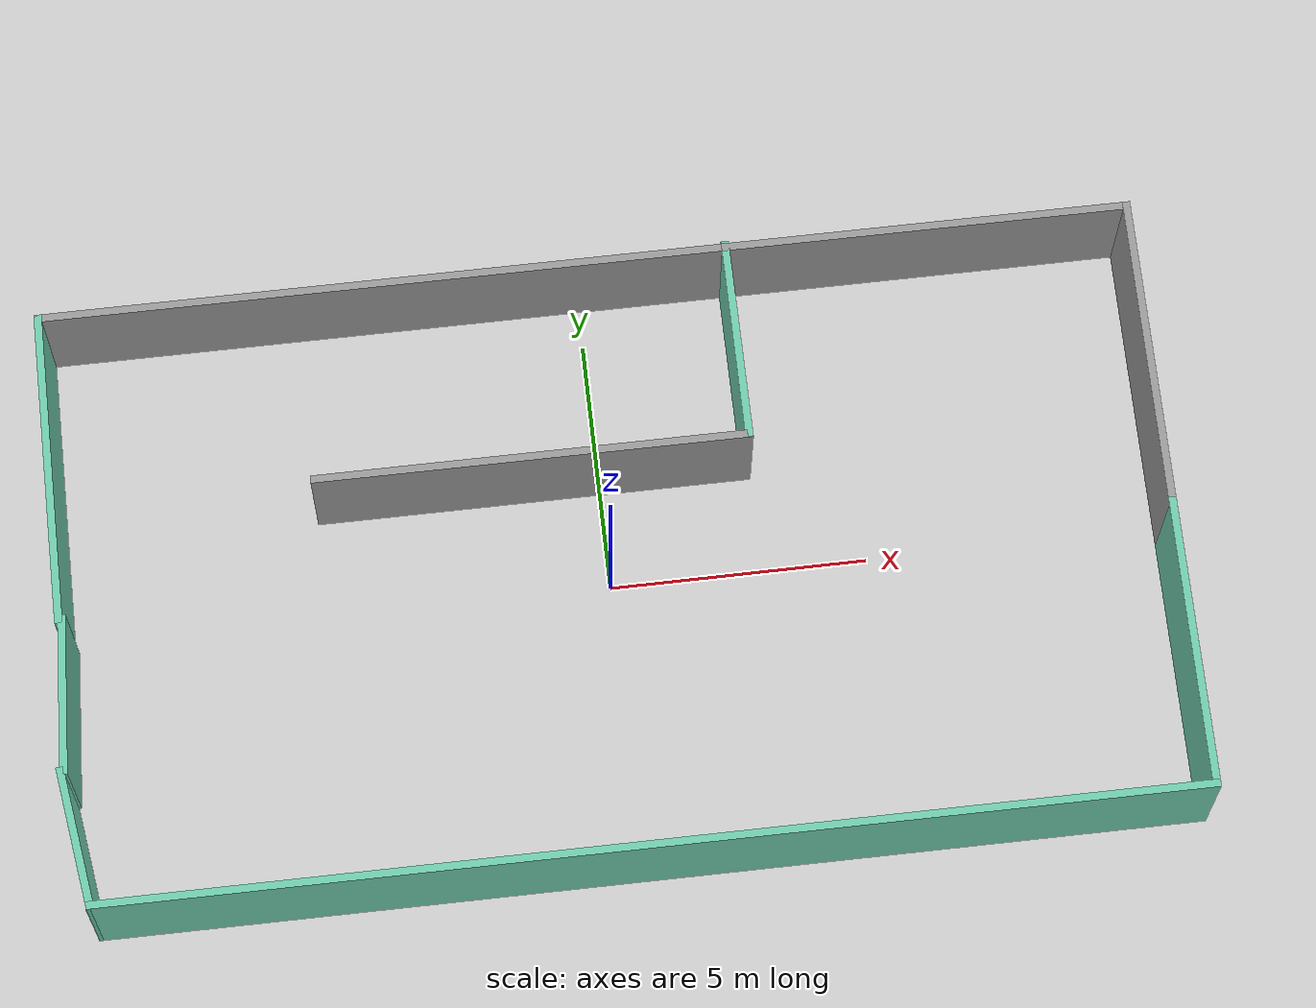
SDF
<sdf version="1.5">
 <world name="default">
  <include><uri>model://sun</uri></include>
  <include><uri>model://ground_plane</uri></include>
  <include><uri>model://test_world2</uri><name>test_world2</name></include>
 </world>
</sdf>

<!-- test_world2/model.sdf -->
<sdf version='1.6'>
  <model name='test_world2'>
    <link name='Wall_1'>
      <pose frame=''>-10.5647 -1.73039 0 0 -0 1.50871</pose>
      <self_collide>0</self_collide>
      <kinematic>0</kinematic>
      <visual name='Wall_1_Visual'>
        <pose frame=''>0 0 1.25 0 -0 0</pose>
        <geometry>
          <box>
            <size>3.1249 0.15 2.5</size>
          </box>
        </geometry>
        <material>
          <script>
            <uri>file://media/materials/scripts/gazebo.material</uri>
            <name>Gazebo/Grey</name>
          </script>
          <ambient>0.435294 0.796078 0.67451 1</ambient>
          <diffuse>0.7 0.7 0.7 1</diffuse>
          <specular>0.01 0.01 0.01 1</specular>
          <emissive>0 0 0 1</emissive>
        </material>
        <meta>
          <layer>0</layer>
        </meta>
        <transparency>0</transparency>
        <cast_shadows>1</cast_shadows>
      </visual>
      <collision name='Wall_1_Collision'>
        <laser_retro>0</laser_retro>
        <max_contacts>10</max_contacts>
        <pose frame=''>0 0 1.25 0 -0 0</pose>
        <geometry>
          <box>
            <size>3.1249 0.15 2.5</size>
          </box>
        </geometry>
        <surface>
          <friction>
            <ode>
              <mu>1</mu>
              <mu2>1</mu2>
              <fdir1>0 0 0</fdir1>
              <slip1>0</slip1>
              <slip2>0</slip2>
            </ode>
            <torsional>
              <coefficient>1</coefficient>
              <patch_radius>0</patch_radius>
              <surface_radius>0</surface_radius>
              <use_patch_radius>1</use_patch_radius>
              <ode>
                <slip>0</slip>
              </ode>
            </torsional>
          </friction>
          <bounce>
            <restitution_coefficient>0</restitution_coefficient>
            <threshold>1e+06</threshold>
          </bounce>
          <contact>
            <collide_without_contact>0</collide_without_contact>
            <collide_without_contact_bitmask>1</collide_without_contact_bitmask>
            <collide_bitmask>1</collide_bitmask>
            <ode>
              <soft_cfm>0</soft_cfm>
              <soft_erp>0.2</soft_erp>
              <kp>1e+13</kp>
              <kd>1</kd>
              <max_vel>0.01</max_vel>
              <min_depth>0</min_depth>
            </ode>
            <bullet>
              <split_impulse>1</split_impulse>
              <split_impulse_penetration_threshold>-0.01</split_impulse_penetration_threshold>
              <soft_cfm>0</soft_cfm>
              <soft_erp>0.2</soft_erp>
              <kp>1e+13</kp>
              <kd>1</kd>
            </bullet>
          </contact>
        </surface>
      </collision>
    </link>
    <link name='Wall_11'>
      <pose frame=''>-10.5031 2.80419 0 0 -0 1.56071</pose>
      <self_collide>0</self_collide>
      <kinematic>0</kinematic>
      <visual name='Wall_11_Visual'>
        <pose frame=''>0 0 1.25 0 -0 0</pose>
        <geometry>
          <box>
            <size>6.25031 0.15 2.5</size>
          </box>
        </geometry>
        <material>
          <script>
            <uri>file://media/materials/scripts/gazebo.material</uri>
            <name>Gazebo/Grey</name>
          </script>
          <ambient>0.435294 0.796078 0.67451 1</ambient>
          <diffuse>0.7 0.7 0.7 1</diffuse>
          <specular>0.01 0.01 0.01 1</specular>
          <emissive>0 0 0 1</emissive>
        </material>
        <meta>
          <layer>0</layer>
        </meta>
        <transparency>0</transparency>
        <cast_shadows>1</cast_shadows>
      </visual>
      <collision name='Wall_11_Collision'>
        <laser_retro>0</laser_retro>
        <max_contacts>10</max_contacts>
        <pose frame=''>0 0 1.25 0 -0 0</pose>
        <geometry>
          <box>
            <size>6.25031 0.15 2.5</size>
          </box>
        </geometry>
        <surface>
          <friction>
            <ode>
              <mu>1</mu>
              <mu2>1</mu2>
              <fdir1>0 0 0</fdir1>
              <slip1>0</slip1>
              <slip2>0</slip2>
            </ode>
            <torsional>
              <coefficient>1</coefficient>
              <patch_radius>0</patch_radius>
              <surface_radius>0</surface_radius>
              <use_patch_radius>1</use_patch_radius>
              <ode>
                <slip>0</slip>
              </ode>
            </torsional>
          </friction>
          <bounce>
            <restitution_coefficient>0</restitution_coefficient>
            <threshold>1e+06</threshold>
          </bounce>
          <contact>
            <collide_without_contact>0</collide_without_contact>
            <collide_without_contact_bitmask>1</collide_without_contact_bitmask>
            <collide_bitmask>1</collide_bitmask>
            <ode>
              <soft_cfm>0</soft_cfm>
              <soft_erp>0.2</soft_erp>
              <kp>1e+13</kp>
              <kd>1</kd>
              <max_vel>0.01</max_vel>
              <min_depth>0</min_depth>
            </ode>
            <bullet>
              <split_impulse>1</split_impulse>
              <split_impulse_penetration_threshold>-0.01</split_impulse_penetration_threshold>
              <soft_cfm>0</soft_cfm>
              <soft_erp>0.2</soft_erp>
              <kp>1e+13</kp>
              <kd>1</kd>
            </bullet>
          </contact>
        </surface>
      </collision>
    </link>
    <link name='Wall_13'>
      <pose frame=''>2.87763 3.95593 0 0 0 -1.5708</pose>
      <self_collide>0</self_collide>
      <kinematic>0</kinematic>
      <inertial>
        <inertia>
          <ixx>0</ixx>
          <ixy>0</ixy>
          <ixz>0</ixz>
          <iyy>0</iyy>
          <iyz>0</iyz>
          <izz>0</izz>
        </inertia>
        <mass>0</mass>
        <pose frame=''>0 0 0 0 -0 0</pose>
      </inertial>
      <visual name='Wall_13_Visual'>
        <pose frame=''>0 0 1.25 0 -0 0</pose>
        <geometry>
          <box>
            <size>4.03163 0.15 2.5</size>
          </box>
        </geometry>
        <material>
          <script>
            <uri>file://media/materials/scripts/gazebo.material</uri>
            <name>Gazebo/Grey</name>
          </script>
          <ambient>0.435294 0.796078 0.67451 1</ambient>
          <diffuse>0.7 0.7 0.7 1</diffuse>
          <specular>0.01 0.01 0.01 1</specular>
          <emissive>0 0 0 1</emissive>
        </material>
        <meta>
          <layer>0</layer>
        </meta>
        <transparency>0</transparency>
        <cast_shadows>1</cast_shadows>
      </visual>
      <collision name='Wall_13_Collision'>
        <laser_retro>0</laser_retro>
        <max_contacts>10</max_contacts>
        <pose frame=''>0 0 1.25 0 -0 0</pose>
        <geometry>
          <box>
            <size>4.03163 0.15 2.5</size>
          </box>
        </geometry>
        <surface>
          <friction>
            <ode>
              <mu>1</mu>
              <mu2>1</mu2>
              <fdir1>0 0 0</fdir1>
              <slip1>0</slip1>
              <slip2>0</slip2>
            </ode>
            <torsional>
              <coefficient>1</coefficient>
              <patch_radius>0</patch_radius>
              <surface_radius>0</surface_radius>
              <use_patch_radius>1</use_patch_radius>
              <ode>
                <slip>0</slip>
              </ode>
            </torsional>
          </friction>
          <bounce>
            <restitution_coefficient>0</restitution_coefficient>
            <threshold>1e+06</threshold>
          </bounce>
          <contact>
            <collide_without_contact>0</collide_without_contact>
            <collide_without_contact_bitmask>1</collide_without_contact_bitmask>
            <collide_bitmask>1</collide_bitmask>
            <ode>
              <soft_cfm>0</soft_cfm>
              <soft_erp>0.2</soft_erp>
              <kp>1e+13</kp>
              <kd>1</kd>
              <max_vel>0.01</max_vel>
              <min_depth>0</min_depth>
            </ode>
            <bullet>
              <split_impulse>1</split_impulse>
              <split_impulse_penetration_threshold>-0.01</split_impulse_penetration_threshold>
              <soft_cfm>0</soft_cfm>
              <soft_erp>0.2</soft_erp>
              <kp>1e+13</kp>
              <kd>1</kd>
            </bullet>
          </contact>
        </surface>
      </collision>
    </link>
    <link name='Wall_16'>
      <pose frame=''>6.80263 5.85419 0 0 -0 0</pose>
      <self_collide>0</self_collide>
      <kinematic>0</kinematic>
      <visual name='Wall_16_Visual'>
        <pose frame=''>0 0 1.25 0 -0 0</pose>
        <geometry>
          <box>
            <size>8 0.15 2.5</size>
          </box>
        </geometry>
        <material>
          <script>
            <uri>file://media/materials/scripts/gazebo.material</uri>
            <name>Gazebo/Grey</name>
          </script>
          <ambient>1 1 1 1</ambient>
          <diffuse>0.7 0.7 0.7 1</diffuse>
          <specular>0.01 0.01 0.01 1</specular>
          <emissive>0 0 0 1</emissive>
        </material>
        <meta>
          <layer>0</layer>
        </meta>
        <transparency>0</transparency>
        <cast_shadows>1</cast_shadows>
      </visual>
      <collision name='Wall_16_Collision'>
        <laser_retro>0</laser_retro>
        <max_contacts>10</max_contacts>
        <pose frame=''>0 0 1.25 0 -0 0</pose>
        <geometry>
          <box>
            <size>8 0.15 2.5</size>
          </box>
        </geometry>
        <surface>
          <friction>
            <ode>
              <mu>1</mu>
              <mu2>1</mu2>
              <fdir1>0 0 0</fdir1>
              <slip1>0</slip1>
              <slip2>0</slip2>
            </ode>
            <torsional>
              <coefficient>1</coefficient>
              <patch_radius>0</patch_radius>
              <surface_radius>0</surface_radius>
              <use_patch_radius>1</use_patch_radius>
              <ode>
                <slip>0</slip>
              </ode>
            </torsional>
          </friction>
          <bounce>
            <restitution_coefficient>0</restitution_coefficient>
            <threshold>1e+06</threshold>
          </bounce>
          <contact>
            <collide_without_contact>0</collide_without_contact>
            <collide_without_contact_bitmask>1</collide_without_contact_bitmask>
            <collide_bitmask>1</collide_bitmask>
            <ode>
              <soft_cfm>0</soft_cfm>
              <soft_erp>0.2</soft_erp>
              <kp>1e+13</kp>
              <kd>1</kd>
              <max_vel>0.01</max_vel>
              <min_depth>0</min_depth>
            </ode>
            <bullet>
              <split_impulse>1</split_impulse>
              <split_impulse_penetration_threshold>-0.01</split_impulse_penetration_threshold>
              <soft_cfm>0</soft_cfm>
              <soft_erp>0.2</soft_erp>
              <kp>1e+13</kp>
              <kd>1</kd>
            </bullet>
          </contact>
        </surface>
      </collision>
    </link>
    <link name='Wall_17'>
      <pose frame=''>10.7276 2.80419 0 0 0 -1.5708</pose>
      <self_collide>0</self_collide>
      <kinematic>0</kinematic>
      <visual name='Wall_17_Visual'>
        <pose frame=''>0 0 1.25 0 -0 0</pose>
        <geometry>
          <box>
            <size>6.25 0.15 2.5</size>
          </box>
        </geometry>
        <material>
          <script>
            <uri>file://media/materials/scripts/gazebo.material</uri>
            <name>Gazebo/Grey</name>
          </script>
          <ambient>1 1 1 1</ambient>
          <diffuse>0.7 0.7 0.7 1</diffuse>
          <specular>0.01 0.01 0.01 1</specular>
          <emissive>0 0 0 1</emissive>
        </material>
        <meta>
          <layer>0</layer>
        </meta>
        <transparency>0</transparency>
        <cast_shadows>1</cast_shadows>
      </visual>
      <collision name='Wall_17_Collision'>
        <laser_retro>0</laser_retro>
        <max_contacts>10</max_contacts>
        <pose frame=''>0 0 1.25 0 -0 0</pose>
        <geometry>
          <box>
            <size>6.25 0.15 2.5</size>
          </box>
        </geometry>
        <surface>
          <friction>
            <ode>
              <mu>1</mu>
              <mu2>1</mu2>
              <fdir1>0 0 0</fdir1>
              <slip1>0</slip1>
              <slip2>0</slip2>
            </ode>
            <torsional>
              <coefficient>1</coefficient>
              <patch_radius>0</patch_radius>
              <surface_radius>0</surface_radius>
              <use_patch_radius>1</use_patch_radius>
              <ode>
                <slip>0</slip>
              </ode>
            </torsional>
          </friction>
          <bounce>
            <restitution_coefficient>0</restitution_coefficient>
            <threshold>1e+06</threshold>
          </bounce>
          <contact>
            <collide_without_contact>0</collide_without_contact>
            <collide_without_contact_bitmask>1</collide_without_contact_bitmask>
            <collide_bitmask>1</collide_bitmask>
            <ode>
              <soft_cfm>0</soft_cfm>
              <soft_erp>0.2</soft_erp>
              <kp>1e+13</kp>
              <kd>1</kd>
              <max_vel>0.01</max_vel>
              <min_depth>0</min_depth>
            </ode>
            <bullet>
              <split_impulse>1</split_impulse>
              <split_impulse_penetration_threshold>-0.01</split_impulse_penetration_threshold>
              <soft_cfm>0</soft_cfm>
              <soft_erp>0.2</soft_erp>
              <kp>1e+13</kp>
              <kd>1</kd>
            </bullet>
          </contact>
        </surface>
      </collision>
    </link>
    <link name='Wall_20'>
      <pose frame=''>-3.79737 5.85419 0 0 -0 0</pose>
      <self_collide>0</self_collide>
      <kinematic>0</kinematic>
      <visual name='Wall_20_Visual'>
        <pose frame=''>0 0 1.25 0 -0 0</pose>
        <geometry>
          <box>
            <size>13.5 0.15 2.5</size>
          </box>
        </geometry>
        <material>
          <script>
            <uri>file://media/materials/scripts/gazebo.material</uri>
            <name>Gazebo/Grey</name>
          </script>
          <ambient>1 1 1 1</ambient>
          <diffuse>0.7 0.7 0.7 1</diffuse>
          <specular>0.01 0.01 0.01 1</specular>
          <emissive>0 0 0 1</emissive>
        </material>
        <meta>
          <layer>0</layer>
        </meta>
        <transparency>0</transparency>
        <cast_shadows>1</cast_shadows>
      </visual>
      <collision name='Wall_20_Collision'>
        <laser_retro>0</laser_retro>
        <max_contacts>10</max_contacts>
        <pose frame=''>0 0 1.25 0 -0 0</pose>
        <geometry>
          <box>
            <size>13.5 0.15 2.5</size>
          </box>
        </geometry>
        <surface>
          <friction>
            <ode>
              <mu>1</mu>
              <mu2>1</mu2>
              <fdir1>0 0 0</fdir1>
              <slip1>0</slip1>
              <slip2>0</slip2>
            </ode>
            <torsional>
              <coefficient>1</coefficient>
              <patch_radius>0</patch_radius>
              <surface_radius>0</surface_radius>
              <use_patch_radius>1</use_patch_radius>
              <ode>
                <slip>0</slip>
              </ode>
            </torsional>
          </friction>
          <bounce>
            <restitution_coefficient>0</restitution_coefficient>
            <threshold>1e+06</threshold>
          </bounce>
          <contact>
            <collide_without_contact>0</collide_without_contact>
            <collide_without_contact_bitmask>1</collide_without_contact_bitmask>
            <collide_bitmask>1</collide_bitmask>
            <ode>
              <soft_cfm>0</soft_cfm>
              <soft_erp>0.2</soft_erp>
              <kp>1e+13</kp>
              <kd>1</kd>
              <max_vel>0.01</max_vel>
              <min_depth>0</min_depth>
            </ode>
            <bullet>
              <split_impulse>1</split_impulse>
              <split_impulse_penetration_threshold>-0.01</split_impulse_penetration_threshold>
              <soft_cfm>0</soft_cfm>
              <soft_erp>0.2</soft_erp>
              <kp>1e+13</kp>
              <kd>1</kd>
            </bullet>
          </contact>
        </surface>
      </collision>
    </link>
    <link name='Wall_25'>
      <pose frame=''>-1.29737 2.00122 0 0 -0 3.14159</pose>
      <self_collide>0</self_collide>
      <kinematic>0</kinematic>
      <visual name='Wall_25_Visual'>
        <pose frame=''>0 0 1.25 0 -0 0</pose>
        <geometry>
          <box>
            <size>8.5 0.15 2.5</size>
          </box>
        </geometry>
        <material>
          <script>
            <uri>file://media/materials/scripts/gazebo.material</uri>
            <name>Gazebo/Grey</name>
          </script>
          <ambient>1 1 1 1</ambient>
          <diffuse>0.7 0.7 0.7 1</diffuse>
          <specular>0.01 0.01 0.01 1</specular>
          <emissive>0 0 0 1</emissive>
        </material>
        <meta>
          <layer>0</layer>
        </meta>
        <transparency>0</transparency>
        <cast_shadows>1</cast_shadows>
      </visual>
      <collision name='Wall_25_Collision'>
        <laser_retro>0</laser_retro>
        <max_contacts>10</max_contacts>
        <pose frame=''>0 0 1.25 0 -0 0</pose>
        <geometry>
          <box>
            <size>8.5 0.15 2.5</size>
          </box>
        </geometry>
        <surface>
          <friction>
            <ode>
              <mu>1</mu>
              <mu2>1</mu2>
              <fdir1>0 0 0</fdir1>
              <slip1>0</slip1>
              <slip2>0</slip2>
            </ode>
            <torsional>
              <coefficient>1</coefficient>
              <patch_radius>0</patch_radius>
              <surface_radius>0</surface_radius>
              <use_patch_radius>1</use_patch_radius>
              <ode>
                <slip>0</slip>
              </ode>
            </torsional>
          </friction>
          <bounce>
            <restitution_coefficient>0</restitution_coefficient>
            <threshold>1e+06</threshold>
          </bounce>
          <contact>
            <collide_without_contact>0</collide_without_contact>
            <collide_without_contact_bitmask>1</collide_without_contact_bitmask>
            <collide_bitmask>1</collide_bitmask>
            <ode>
              <soft_cfm>0</soft_cfm>
              <soft_erp>0.2</soft_erp>
              <kp>1e+13</kp>
              <kd>1</kd>
              <max_vel>0.01</max_vel>
              <min_depth>0</min_depth>
            </ode>
            <bullet>
              <split_impulse>1</split_impulse>
              <split_impulse_penetration_threshold>-0.01</split_impulse_penetration_threshold>
              <soft_cfm>0</soft_cfm>
              <soft_erp>0.2</soft_erp>
              <kp>1e+13</kp>
              <kd>1</kd>
            </bullet>
          </contact>
        </surface>
      </collision>
    </link>
    <link name='Wall_4'>
      <pose frame=''>10.7276 -3.04581 0 0 0 -1.5708</pose>
      <self_collide>0</self_collide>
      <kinematic>0</kinematic>
      <visual name='Wall_4_Visual'>
        <pose frame=''>0 0 1.25 0 -0 0</pose>
        <geometry>
          <box>
            <size>5.75 0.15 2.5</size>
          </box>
        </geometry>
        <material>
          <script>
            <uri>file://media/materials/scripts/gazebo.material</uri>
            <name>Gazebo/Grey</name>
          </script>
          <ambient>0.435294 0.796078 0.67451 1</ambient>
          <diffuse>0.7 0.7 0.7 1</diffuse>
          <specular>0.01 0.01 0.01 1</specular>
          <emissive>0 0 0 1</emissive>
        </material>
        <meta>
          <layer>0</layer>
        </meta>
        <transparency>0</transparency>
        <cast_shadows>1</cast_shadows>
      </visual>
      <collision name='Wall_4_Collision'>
        <laser_retro>0</laser_retro>
        <max_contacts>10</max_contacts>
        <pose frame=''>0 0 1.25 0 -0 0</pose>
        <geometry>
          <box>
            <size>5.75 0.15 2.5</size>
          </box>
        </geometry>
        <surface>
          <friction>
            <ode>
              <mu>1</mu>
              <mu2>1</mu2>
              <fdir1>0 0 0</fdir1>
              <slip1>0</slip1>
              <slip2>0</slip2>
            </ode>
            <torsional>
              <coefficient>1</coefficient>
              <patch_radius>0</patch_radius>
              <surface_radius>0</surface_radius>
              <use_patch_radius>1</use_patch_radius>
              <ode>
                <slip>0</slip>
              </ode>
            </torsional>
          </friction>
          <bounce>
            <restitution_coefficient>0</restitution_coefficient>
            <threshold>1e+06</threshold>
          </bounce>
          <contact>
            <collide_without_contact>0</collide_without_contact>
            <collide_without_contact_bitmask>1</collide_without_contact_bitmask>
            <collide_bitmask>1</collide_bitmask>
            <ode>
              <soft_cfm>0</soft_cfm>
              <soft_erp>0.2</soft_erp>
              <kp>1e+13</kp>
              <kd>1</kd>
              <max_vel>0.01</max_vel>
              <min_depth>0</min_depth>
            </ode>
            <bullet>
              <split_impulse>1</split_impulse>
              <split_impulse_penetration_threshold>-0.01</split_impulse_penetration_threshold>
              <soft_cfm>0</soft_cfm>
              <soft_erp>0.2</soft_erp>
              <kp>1e+13</kp>
              <kd>1</kd>
            </bullet>
          </contact>
        </surface>
      </collision>
    </link>
    <link name='Wall_5'>
      <pose frame=''>0.177627 -5.84581 0 0 -0 3.14159</pose>
      <self_collide>0</self_collide>
      <kinematic>0</kinematic>
      <visual name='Wall_5_Visual'>
        <pose frame=''>0 0 1.25 0 -0 0</pose>
        <geometry>
          <box>
            <size>21.25 0.15 2.5</size>
          </box>
        </geometry>
        <material>
          <script>
            <uri>file://media/materials/scripts/gazebo.material</uri>
            <name>Gazebo/Grey</name>
          </script>
          <ambient>0.435294 0.796078 0.67451 1</ambient>
          <diffuse>0.7 0.7 0.7 1</diffuse>
          <specular>0.01 0.01 0.01 1</specular>
          <emissive>0 0 0 1</emissive>
        </material>
        <meta>
          <layer>0</layer>
        </meta>
        <transparency>0</transparency>
        <cast_shadows>1</cast_shadows>
      </visual>
      <collision name='Wall_5_Collision'>
        <laser_retro>0</laser_retro>
        <max_contacts>10</max_contacts>
        <pose frame=''>0 0 1.25 0 -0 0</pose>
        <geometry>
          <box>
            <size>21.25 0.15 2.5</size>
          </box>
        </geometry>
        <surface>
          <friction>
            <ode>
              <mu>1</mu>
              <mu2>1</mu2>
              <fdir1>0 0 0</fdir1>
              <slip1>0</slip1>
              <slip2>0</slip2>
            </ode>
            <torsional>
              <coefficient>1</coefficient>
              <patch_radius>0</patch_radius>
              <surface_radius>0</surface_radius>
              <use_patch_radius>1</use_patch_radius>
              <ode>
                <slip>0</slip>
              </ode>
            </torsional>
          </friction>
          <bounce>
            <restitution_coefficient>0</restitution_coefficient>
            <threshold>1e+06</threshold>
          </bounce>
          <contact>
            <collide_without_contact>0</collide_without_contact>
            <collide_without_contact_bitmask>1</collide_without_contact_bitmask>
            <collide_bitmask>1</collide_bitmask>
            <ode>
              <soft_cfm>0</soft_cfm>
              <soft_erp>0.2</soft_erp>
              <kp>1e+13</kp>
              <kd>1</kd>
              <max_vel>0.01</max_vel>
              <min_depth>0</min_depth>
            </ode>
            <bullet>
              <split_impulse>1</split_impulse>
              <split_impulse_penetration_threshold>-0.01</split_impulse_penetration_threshold>
              <soft_cfm>0</soft_cfm>
              <soft_erp>0.2</soft_erp>
              <kp>1e+13</kp>
              <kd>1</kd>
            </bullet>
          </contact>
        </surface>
      </collision>
    </link>
    <link name='Wall_6'>
      <pose frame=''>-10.5454 -4.53039 0 0 -0 1.70161</pose>
      <self_collide>0</self_collide>
      <kinematic>0</kinematic>
      <visual name='Wall_6_Visual'>
        <pose frame=''>0 0 1.25 0 -0 0</pose>
        <geometry>
          <box>
            <size>2.8035 0.15 2.5</size>
          </box>
        </geometry>
        <material>
          <script>
            <uri>file://media/materials/scripts/gazebo.material</uri>
            <name>Gazebo/Grey</name>
          </script>
          <ambient>0.435294 0.796078 0.67451 1</ambient>
          <diffuse>0.7 0.7 0.7 1</diffuse>
          <specular>0.01 0.01 0.01 1</specular>
          <emissive>0 0 0 1</emissive>
        </material>
        <meta>
          <layer>0</layer>
        </meta>
        <transparency>0</transparency>
        <cast_shadows>1</cast_shadows>
      </visual>
      <collision name='Wall_6_Collision'>
        <laser_retro>0</laser_retro>
        <max_contacts>10</max_contacts>
        <pose frame=''>0 0 1.25 0 -0 0</pose>
        <geometry>
          <box>
            <size>2.8035 0.15 2.5</size>
          </box>
        </geometry>
        <surface>
          <friction>
            <ode>
              <mu>1</mu>
              <mu2>1</mu2>
              <fdir1>0 0 0</fdir1>
              <slip1>0</slip1>
              <slip2>0</slip2>
            </ode>
            <torsional>
              <coefficient>1</coefficient>
              <patch_radius>0</patch_radius>
              <surface_radius>0</surface_radius>
              <use_patch_radius>1</use_patch_radius>
              <ode>
                <slip>0</slip>
              </ode>
            </torsional>
          </friction>
          <bounce>
            <restitution_coefficient>0</restitution_coefficient>
            <threshold>1e+06</threshold>
          </bounce>
          <contact>
            <collide_without_contact>0</collide_without_contact>
            <collide_without_contact_bitmask>1</collide_without_contact_bitmask>
            <collide_bitmask>1</collide_bitmask>
            <ode>
              <soft_cfm>0</soft_cfm>
              <soft_erp>0.2</soft_erp>
              <kp>1e+13</kp>
              <kd>1</kd>
              <max_vel>0.01</max_vel>
              <min_depth>0</min_depth>
            </ode>
            <bullet>
              <split_impulse>1</split_impulse>
              <split_impulse_penetration_threshold>-0.01</split_impulse_penetration_threshold>
              <soft_cfm>0</soft_cfm>
              <soft_erp>0.2</soft_erp>
              <kp>1e+13</kp>
              <kd>1</kd>
            </bullet>
          </contact>
        </surface>
      </collision>
    </link>
    <static>1</static>
    <allow_auto_disable>1</allow_auto_disable>
  </model>
</sdf>
